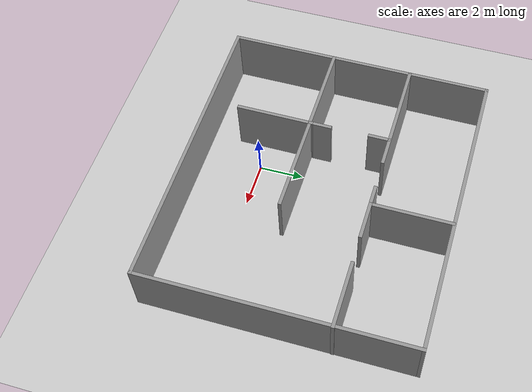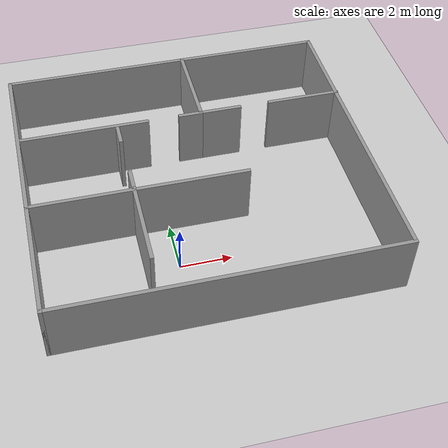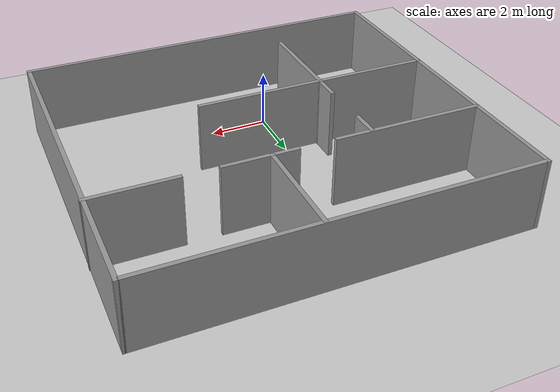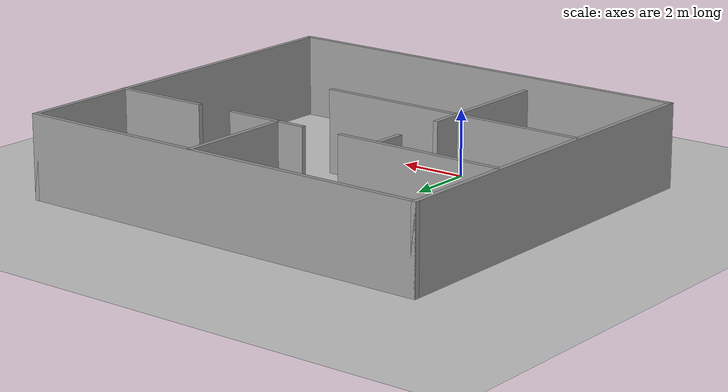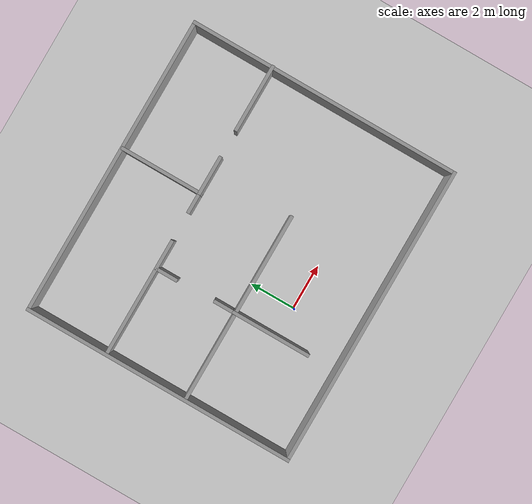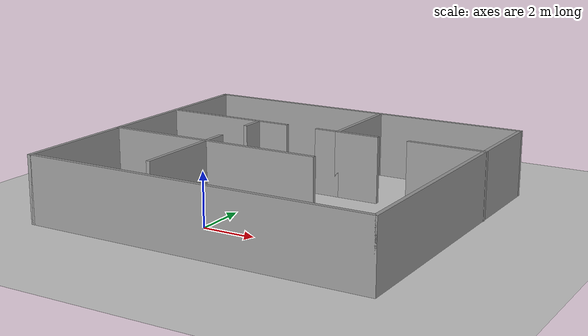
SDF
<sdf version="1.7">
 <world name="default">
  <light name="sun" type="directional">
   <pose>0 0 10 0 -0 0</pose>
   <diffuse>0.8 0.8 0.8 1</diffuse>
   <specular>0.2 0.2 0.2 1</specular>
   <attenuation>
    <range>1000</range>
    <constant>0.9</constant>
    <linear>0.01</linear>
    <quadratic>0.001</quadratic>
   </attenuation>
   <direction>-0.5 0.1 -0.9</direction>
   <spot><inner_angle>0</inner_angle><outer_angle>0</outer_angle><falloff>0</falloff></spot>
  </light>
  <model name="ground_plane">
   <static>1</static>
   <link name="link">
    <collision name="collision">
     <geometry><plane><normal>0 0 1</normal><size>100 100</size></plane></geometry>
     <surface><friction><ode><mu>100</mu><mu2>50</mu2></ode></friction></surface>
    </collision>
    <visual name="visual">
     <cast_shadows>0</cast_shadows>
     <geometry><plane><normal>0 0 1</normal><size>100 100</size></plane></geometry>
     <material>
      <script><uri>file://media/materials/scripts/gazebo.material</uri><name>Gazebo/Grey</name></script>
     </material>
    </visual>
   </link>
  </model>
  <gravity>0 0 -9.8</gravity>
  <magnetic_field>6e-06 2.3e-05 -4.2e-05</magnetic_field>
  <atmosphere type="adiabatic"/>
  <physics type="ode">
   <max_step_size>0.001</max_step_size>
   <real_time_factor>1</real_time_factor>
   <real_time_update_rate>1000</real_time_update_rate>
  </physics>
  <scene><ambient>0.4 0.4 0.4 1</ambient><background>0.7 0.7 0.7 1</background><shadows>1</shadows></scene>
  <spherical_coordinates>
   <surface_model>EARTH_WGS84</surface_model>
   <latitude_deg>0</latitude_deg>
   <longitude_deg>0</longitude_deg>
   <elevation>0</elevation>
   <heading_deg>0</heading_deg>
  </spherical_coordinates>
  <model name="Untitled">
   <pose>1.31368 3.23108 0 0 -0 0</pose>
   <link name="Wall_0">
    <collision name="Wall_0_Collision">
     <geometry><box><size>12 0.15 2.5</size></box></geometry>
     <pose>0 0 1.25 0 -0 0</pose>
    </collision>
    <visual name="Wall_0_Visual">
     <pose>0 0 1.25 0 -0 0</pose>
     <geometry><box><size>12 0.15 2.5</size></box></geometry>
     <material>
      <script><uri>file://media/materials/scripts/gazebo.material</uri><name>Gazebo/Grey</name></script>
      <ambient>1 1 1 1</ambient>
     </material>
     <meta><layer>0</layer></meta>
    </visual>
    <pose>-6.56142 0 0 0 -0 -1.5708</pose>
   </link>
   <link name="Wall_11">
    <collision name="Wall_11_Collision">
     <geometry><box><size>5.25 0.15 2.5</size></box></geometry>
     <pose>0 0 1.25 0 -0 0</pose>
    </collision>
    <visual name="Wall_11_Visual">
     <pose>0 0 1.25 0 -0 0</pose>
     <geometry><box><size>5.25 0.15 2.5</size></box></geometry>
     <material>
      <script><uri>file://media/materials/scripts/gazebo.material</uri><name>Gazebo/Grey</name></script>
      <ambient>1 1 1 1</ambient>
     </material>
     <meta><layer>0</layer></meta>
    </visual>
    <pose>-3.96175 2.36735 0 0 -0 0</pose>
   </link>
   <link name="Wall_13">
    <collision name="Wall_13_Collision">
     <geometry><box><size>1 0.15 2.5</size></box></geometry>
     <pose>0 0 1.25 0 -0 0</pose>
    </collision>
    <visual name="Wall_13_Visual">
     <pose>0 0 1.25 0 -0 0</pose>
     <geometry><box><size>1 0.15 2.5</size></box></geometry>
     <material>
      <script><uri>file://media/materials/scripts/gazebo.material</uri><name>Gazebo/Grey</name></script>
      <ambient>1 1 1 1</ambient>
     </material>
     <meta><layer>0</layer></meta>
    </visual>
    <pose>-2.62801 1.9019 0 0 -0 -1.5708</pose>
   </link>
   <link name="Wall_15">
    <collision name="Wall_15_Collision">
     <geometry><box><size>1 0.15 2.5</size></box></geometry>
     <pose>0 0 1.25 0 -0 0</pose>
    </collision>
    <visual name="Wall_15_Visual">
     <pose>0 0 1.25 0 -0 0</pose>
     <geometry><box><size>1 0.15 2.5</size></box></geometry>
     <material>
      <script><uri>file://media/materials/scripts/gazebo.material</uri><name>Gazebo/Grey</name></script>
      <ambient>1 1 1 1</ambient>
     </material>
     <meta><layer>0</layer></meta>
    </visual>
    <pose>-2.58756 -0.742248 0 0 -0 -1.5708</pose>
   </link>
   <link name="Wall_17">
    <collision name="Wall_17_Collision">
     <geometry><box><size>3.5 0.15 2.5</size></box></geometry>
     <pose>0 0 1.25 0 -0 0</pose>
    </collision>
    <visual name="Wall_17_Visual">
     <pose>0 0 1.25 0 -0 0</pose>
     <geometry><box><size>3.5 0.15 2.5</size></box></geometry>
     <material>
      <script><uri>file://media/materials/scripts/gazebo.material</uri><name>Gazebo/Grey</name></script>
      <ambient>1 1 1 1</ambient>
     </material>
     <meta><layer>0</layer></meta>
    </visual>
    <pose>0.808752 4.20689 0 0 -0 -1.5708</pose>
   </link>
   <link name="Wall_2">
    <collision name="Wall_2_Collision">
     <geometry><box><size>13.25 0.15 2.5</size></box></geometry>
     <pose>0 0 1.25 0 -0 0</pose>
    </collision>
    <visual name="Wall_2_Visual">
     <pose>0 0 1.25 0 -0 0</pose>
     <geometry><box><size>13.25 0.15 2.5</size></box></geometry>
     <material>
      <script><uri>file://media/materials/scripts/gazebo.material</uri><name>Gazebo/Grey</name></script>
      <ambient>1 1 1 1</ambient>
     </material>
     <meta><layer>0</layer></meta>
    </visual>
    <pose>-0.011418 -5.925 0 0 -0 0</pose>
   </link>
   <link name="Wall_21">
    <collision name="Wall_21_Collision">
     <geometry><box><size>1 0.15 2.5</size></box></geometry>
     <pose>0 0 1.25 0 -0 0</pose>
    </collision>
    <visual name="Wall_21_Visual">
     <pose>0 0 1.25 0 -0 0</pose>
     <geometry><box><size>1 0.15 2.5</size></box></geometry>
     <material>
      <script><uri>file://media/materials/scripts/gazebo.material</uri><name>Gazebo/Grey</name></script>
      <ambient>1 1 1 1</ambient>
     </material>
     <meta><layer>0</layer></meta>
    </visual>
    <pose>0.385852 2.3819 0 0 -0 0</pose>
   </link>
   <link name="Wall_23">
    <collision name="Wall_23_Collision">
     <geometry><box><size>1.75 0.15 2.5</size></box></geometry>
     <pose>0 0 1.25 0 -0 0</pose>
    </collision>
    <visual name="Wall_23_Visual">
     <pose>0 0 1.25 0 -0 0</pose>
     <geometry><box><size>1.75 0.15 2.5</size></box></geometry>
     <material>
      <script><uri>file://media/materials/scripts/gazebo.material</uri><name>Gazebo/Grey</name></script>
      <ambient>1 1 1 1</ambient>
     </material>
     <meta><layer>0</layer></meta>
    </visual>
    <pose>1.61085 2.3819 0 0 -0 0</pose>
   </link>
   <link name="Wall_25">
    <collision name="Wall_25_Collision">
     <geometry><box><size>3 0.15 2.5</size></box></geometry>
     <pose>0 0 1.25 0 -0 0</pose>
    </collision>
    <visual name="Wall_25_Visual">
     <pose>0 0 1.25 0 -0 0</pose>
     <geometry><box><size>3 0.15 2.5</size></box></geometry>
     <material>
      <script><uri>file://media/materials/scripts/gazebo.material</uri><name>Gazebo/Grey</name></script>
      <ambient>1 1 1 1</ambient>
     </material>
     <meta><layer>0</layer></meta>
    </visual>
    <pose>5.13642 2.38553 0 0 -0 0</pose>
   </link>
   <link name="Wall_28">
    <collision name="Wall_28_Collision">
     <geometry><box><size>3.5 0.15 2.5</size></box></geometry>
     <pose>0 0 1.25 0 -0 0</pose>
    </collision>
    <visual name="Wall_28_Visual">
     <pose>0 0 1.25 0 -0 0</pose>
     <geometry><box><size>3.5 0.15 2.5</size></box></geometry>
     <material>
      <script><uri>file://media/materials/scripts/gazebo.material</uri><name>Gazebo/Grey</name></script>
      <ambient>1 1 1 1</ambient>
     </material>
     <meta><layer>0</layer></meta>
    </visual>
    <pose>-2.58756 -2.84225 0 0 -0 -1.5708</pose>
   </link>
   <link name="Wall_3">
    <collision name="Wall_3_Collision">
     <geometry><box><size>12 0.15 2.5</size></box></geometry>
     <pose>0 0 1.25 0 -0 0</pose>
    </collision>
    <visual name="Wall_3_Visual">
     <pose>0 0 1.25 0 -0 0</pose>
     <geometry><box><size>12 0.15 2.5</size></box></geometry>
     <material>
      <script><uri>file://media/materials/scripts/gazebo.material</uri><name>Gazebo/Grey</name></script>
      <ambient>1 1 1 1</ambient>
     </material>
     <meta><layer>0</layer></meta>
    </visual>
    <pose>6.53858 0 0 0 -0 1.5708</pose>
   </link>
   <link name="Wall_5">
    <collision name="Wall_5_Collision">
     <geometry><box><size>13.25 0.15 2.5</size></box></geometry>
     <pose>0 0 1.25 0 -0 0</pose>
    </collision>
    <visual name="Wall_5_Visual">
     <pose>0 0 1.25 0 -0 0</pose>
     <geometry><box><size>13.25 0.15 2.5</size></box></geometry>
     <material>
      <script><uri>file://media/materials/scripts/gazebo.material</uri><name>Gazebo/Grey</name></script>
      <ambient>1 1 1 1</ambient>
     </material>
     <meta><layer>0</layer></meta>
    </visual>
    <pose>-0.011418 5.925 0 0 -0 0</pose>
   </link>
   <link name="Wall_8">
    <collision name="Wall_8_Collision">
     <geometry><box><size>8.5 0.15 2.5</size></box></geometry>
     <pose>0 0 1.25 0 -0 0</pose>
    </collision>
    <visual name="Wall_8_Visual">
     <pose>0 0 1.25 0 -0 0</pose>
     <geometry><box><size>8.5 0.15 2.5</size></box></geometry>
     <material>
      <script><uri>file://media/materials/scripts/gazebo.material</uri><name>Gazebo/Grey</name></script>
      <ambient>1 1 1 1</ambient>
     </material>
     <meta><layer>0</layer></meta>
    </visual>
    <pose>-2.3772 -1.23319 0 0 -0 0</pose>
   </link>
   <static>1</static>
  </model>
 </world>
</sdf>
